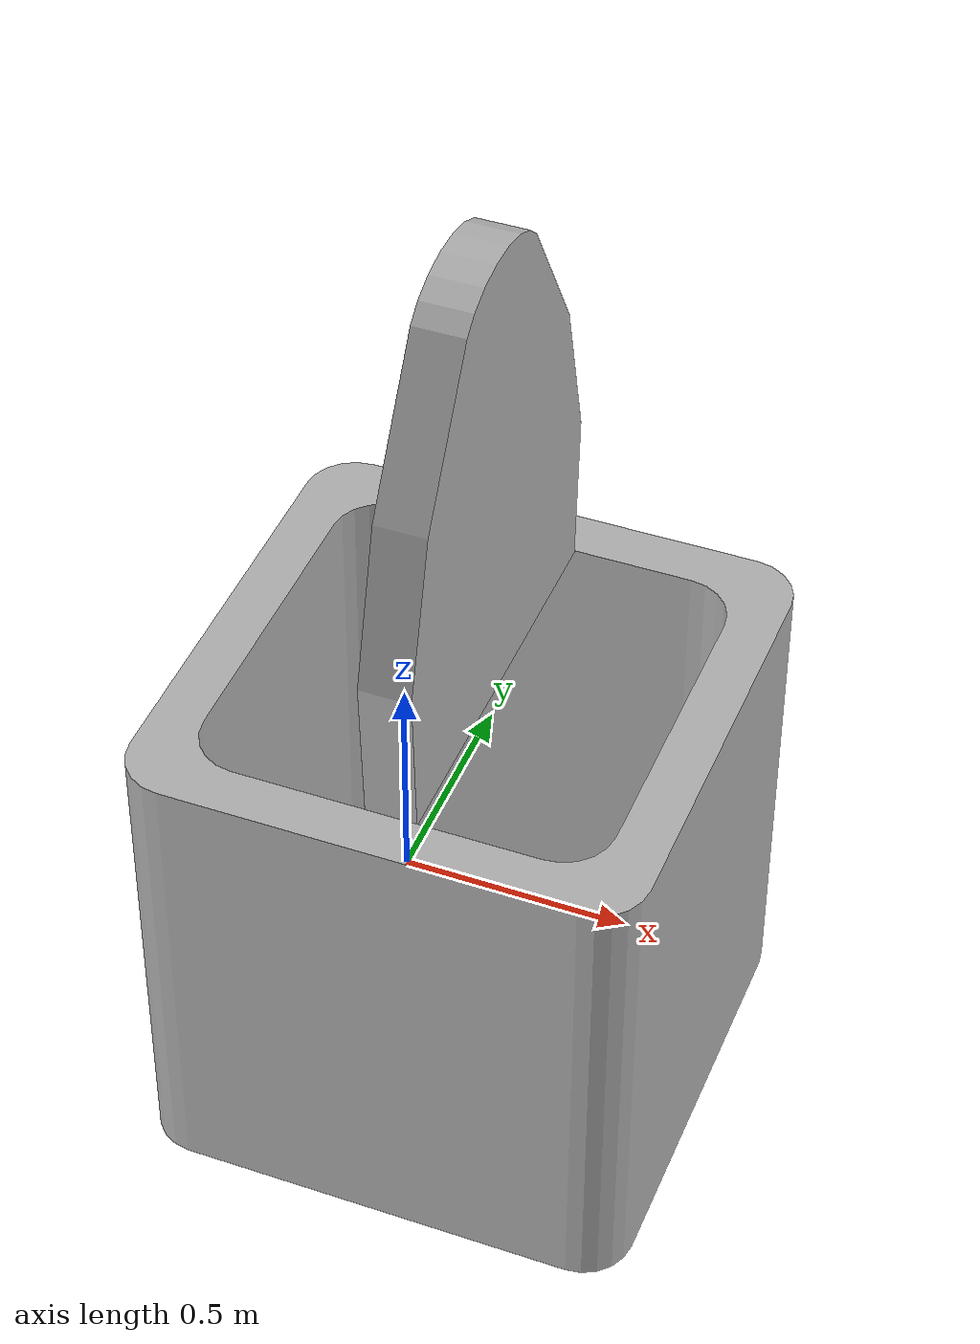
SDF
<?xml version='1.0'?>
<sdf version='1.6'>
  <model name='cubewithflames2'>
    <link name='link_0'>
      <pose frame=''>0 0 0 0 -0 0</pose>
      <inertial>
        <mass>1</mass>
        <inertia>
          <ixx>0.166667</ixx>
          <ixy>0</ixy>
          <ixz>0</ixz>
          <iyy>0.166667</iyy>
          <iyz>0</iyz>
          <izz>0.166667</izz>
        </inertia>
        <pose frame=''>0 0 0 0 -0 0</pose>
      </inertial>
      <gravity>1</gravity>
      <self_collide>0</self_collide>
      <kinematic>0</kinematic>
      <visual name='visual'>
        <pose frame=''>0 0 0 0 -0 0</pose>
        <geometry>
          <mesh>
            <uri>/home/alex/catkin_ws/src/mbzirc2020/mbzirc_gazebo_simulation/challenge_worlds/models/cubewithflames/meshes/Cube_fire.dae</uri>
            <scale>0.01 0.01 0.01</scale>
          </mesh>
        </geometry>
        <material>
          <lighting>1</lighting>
          <script>
            <uri>file://cubewithflames2/materials/scripts/cubewithflames2.material</uri>
            <name>fireflame</name>
          </script>
          <ambient>0.3 0.3 0.3 1</ambient>
          <diffuse>0.7 0.7 0.7 1</diffuse>
          <specular>0.01 0.01 0.01 1</specular>
          <emissive>0 0 0 1</emissive>
          <shader type='vertex'>
            <normal_map>__default__</normal_map>
          </shader>
        </material>
        <cast_shadows>1</cast_shadows>
        <transparency>0</transparency>
      </visual>
      <visual name='ModelPreview_0::link_0::visual_1'>
        <pose frame=''>0.3 -0.4 1 0 -0 0</pose>
        <geometry>
          <mesh>
            <uri>/home/alex/catkin_ws/src/mbzirc2020/mbzirc_gazebo_simulation/challenge_worlds/models/cubewithflames/meshes/Fire_Tongue.dae</uri>
            <scale>0.1 0.08 0.05</scale>
          </mesh>
        </geometry>
        <material>
          <lighting>1</lighting>
          <script>
            <uri>model://cubewithflames2/materials/scripts</uri>
            <uri>model://cubewithflames2/materials/textures</uri>
            <name>fireflame</name>
          </script>
          <ambient>0.3 0.3 0.3 1</ambient>
          <diffuse>0.7 0.7 0.7 1</diffuse>
          <specular>0.01 0.01 0.01 1</specular>
          <emissive>0 0 0 1</emissive>
          <shader type='vertex'>
            <normal_map>__default__</normal_map>
          </shader>
        </material>
        <cast_shadows>1</cast_shadows>
        <transparency>0</transparency>
      </visual>
      <collision name='collision'>
        <laser_retro>0</laser_retro>
        <max_contacts>10</max_contacts>
        <pose frame=''>0 0 0 0 -0 0</pose>
        <geometry>
          <mesh>
            <uri>/home/alex/catkin_ws/src/mbzirc2020/mbzirc_gazebo_simulation/challenge_worlds/models/cubewithflames/meshes/Cube_fire.dae</uri>
          </mesh>
        </geometry>
        <surface>
          <friction>
            <ode>
              <mu>1</mu>
              <mu2>1</mu2>
              <fdir1>0 0 0</fdir1>
              <slip1>0</slip1>
              <slip2>0</slip2>
            </ode>
            <torsional>
              <coefficient>1</coefficient>
              <patch_radius>0</patch_radius>
              <surface_radius>0</surface_radius>
              <use_patch_radius>1</use_patch_radius>
              <ode>
                <slip>0</slip>
              </ode>
            </torsional>
          </friction>
          <bounce>
            <restitution_coefficient>0</restitution_coefficient>
            <threshold>1e+06</threshold>
          </bounce>
          <contact>
            <collide_without_contact>0</collide_without_contact>
            <collide_without_contact_bitmask>1</collide_without_contact_bitmask>
            <collide_bitmask>1</collide_bitmask>
            <ode>
              <soft_cfm>0</soft_cfm>
              <soft_erp>0.2</soft_erp>
              <kp>1e+13</kp>
              <kd>1</kd>
              <max_vel>0.01</max_vel>
              <min_depth>0</min_depth>
            </ode>
            <bullet>
              <split_impulse>1</split_impulse>
              <split_impulse_penetration_threshold>-0.01</split_impulse_penetration_threshold>
              <soft_cfm>0</soft_cfm>
              <soft_erp>0.2</soft_erp>
              <kp>1e+13</kp>
              <kd>1</kd>
            </bullet>
          </contact>
        </surface>
      </collision>
      <collision name='collision_1'>
        <laser_retro>0</laser_retro>
        <max_contacts>10</max_contacts>
        <pose frame=''>0.3 -0.4 1 0 -0 0</pose>
        <geometry>
          <mesh>
            <uri>/home/alex/catkin_ws/src/mbzirc2020/mbzirc_gazebo_simulation/challenge_worlds/models/cubewithflames/meshes/Fire_Tongue.dae</uri>
          </mesh>
        </geometry>
        <surface>
          <friction>
            <ode>
              <mu>1</mu>
              <mu2>1</mu2>
              <fdir1>0 0 0</fdir1>
              <slip1>0</slip1>
              <slip2>0</slip2>
            </ode>
            <torsional>
              <coefficient>1</coefficient>
              <patch_radius>0</patch_radius>
              <surface_radius>0</surface_radius>
              <use_patch_radius>1</use_patch_radius>
              <ode>
                <slip>0</slip>
              </ode>
            </torsional>
          </friction>
          <bounce>
            <restitution_coefficient>0</restitution_coefficient>
            <threshold>1e+06</threshold>
          </bounce>
          <contact>
            <collide_without_contact>0</collide_without_contact>
            <collide_without_contact_bitmask>1</collide_without_contact_bitmask>
            <collide_bitmask>1</collide_bitmask>
            <ode>
              <soft_cfm>0</soft_cfm>
              <soft_erp>0.2</soft_erp>
              <kp>1e+13</kp>
              <kd>1</kd>
              <max_vel>0.01</max_vel>
              <min_depth>0</min_depth>
            </ode>
            <bullet>
              <split_impulse>1</split_impulse>
              <split_impulse_penetration_threshold>-0.01</split_impulse_penetration_threshold>
              <soft_cfm>0</soft_cfm>
              <soft_erp>0.2</soft_erp>
              <kp>1e+13</kp>
              <kd>1</kd>
            </bullet>
          </contact>
        </surface>
      </collision>
    </link>
    <static>1</static>
    <allow_auto_disable>1</allow_auto_disable>
  </model>
</sdf>
